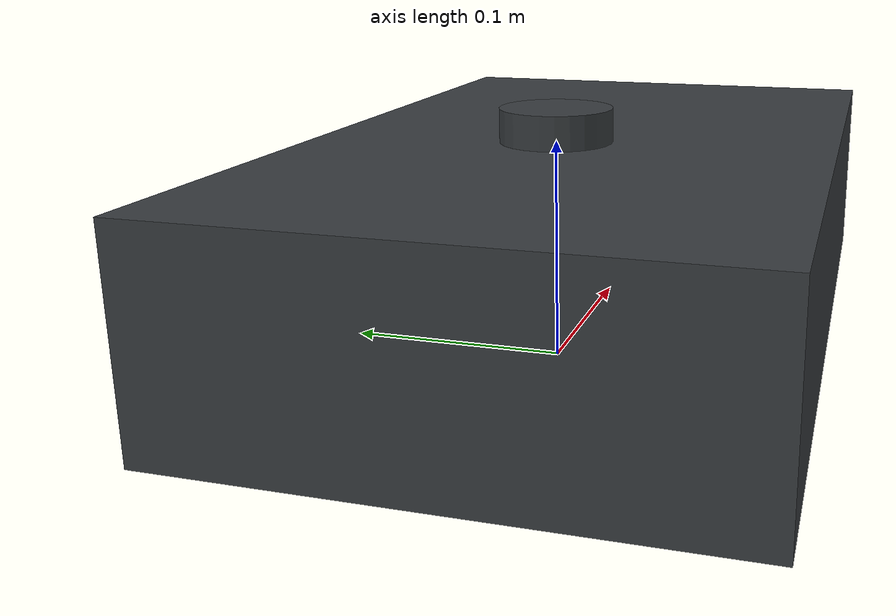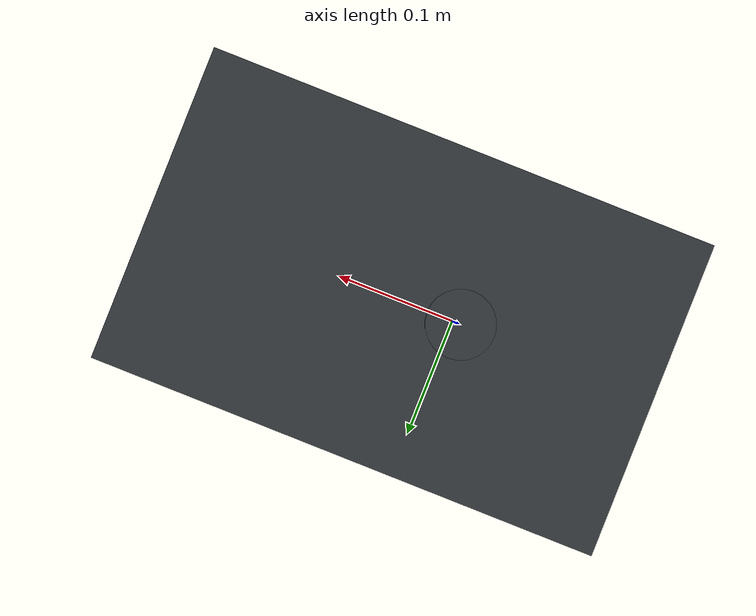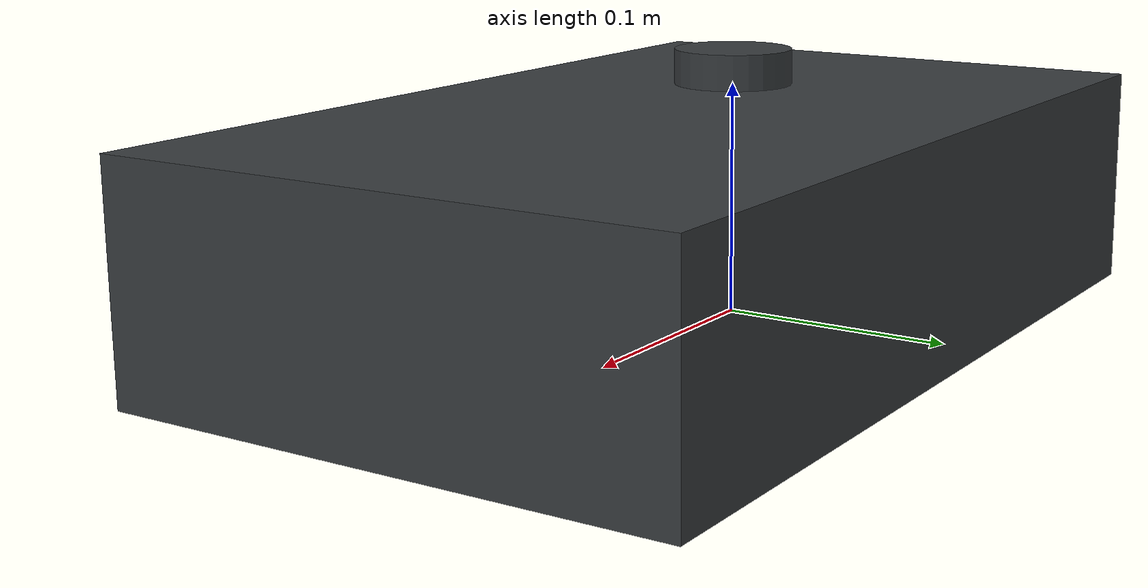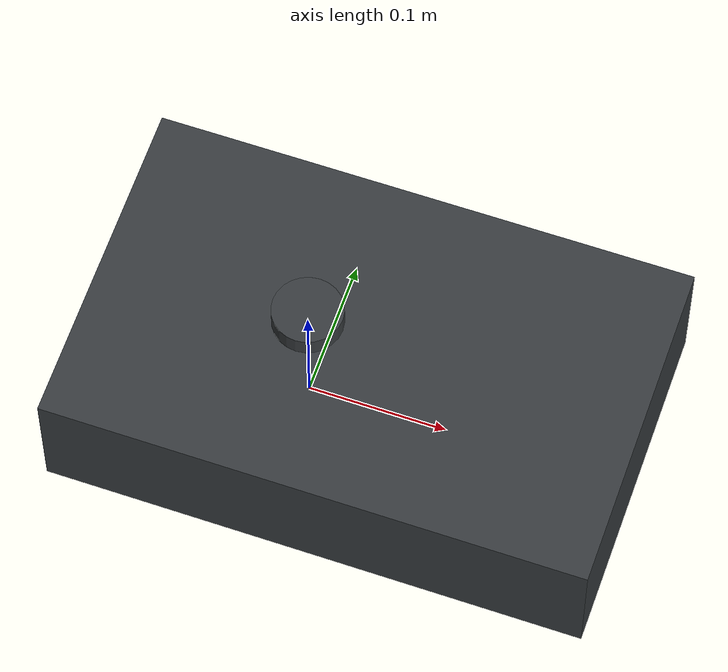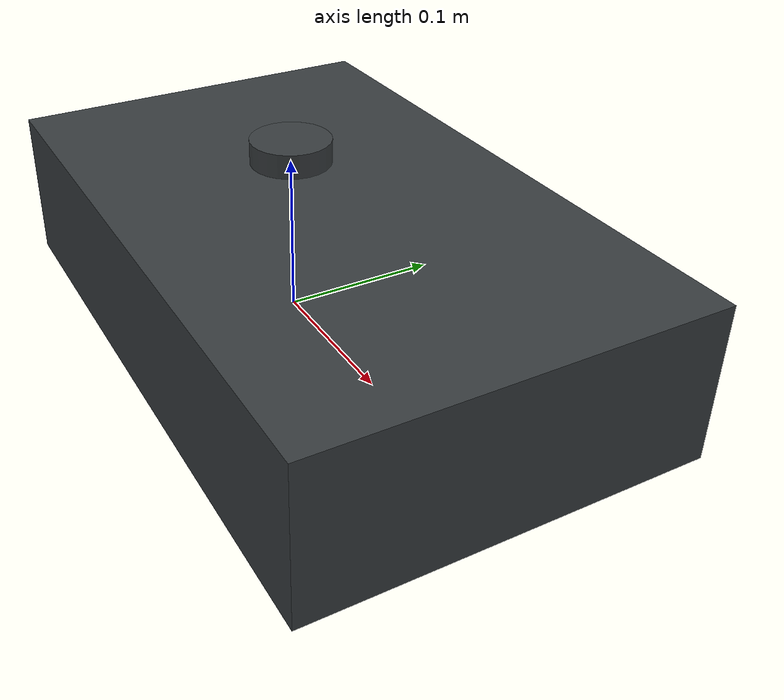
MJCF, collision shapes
<mujoco model="kachaka">
  <compiler angle="radian"/>
  <option cone="elliptic"/>

    <default>
      <default class="kachaka_visual">
        <geom group="2" type="mesh" contype="0" conaffinity="0" density="0"/>
      </default>
      <default class="kachaka_collision">
        <geom group="3" type="capsule"/>
      </default>
    </default>

  <asset>
    <mesh name="body" content_type="model/stl" file="assets/body.stl"/>
    <mesh name="right_tire" content_type="model/stl" file="assets/right_tire.stl"/>
    <mesh name="left_tire" content_type="model/stl" file="assets/left_tire.stl"/>
    <mesh name="solenoid" content_type="model/stl" file="assets/solenoid.stl"/>
  </asset>

  <worldbody>
    <light name="spotlight_kachaka" mode="targetbodycom" target="kachaka_base_link" pos="0 0 2"/>
    <body name="kachaka_base_link">
      <inertial pos="0.0435 0.0 0.0475" mass="10.0" diaginertia="0.055521 0.132328 0.172808"/>
      <freejoint/>
      <geom pos="-0.15 -0.12 0" quat="1 0 0 0" rgba="0.2175 0.2355 0.246 1" mesh="body" class="kachaka_visual"/>
      <geom size="0.1935 0.12 0.0475" pos="0.0435 0 0.0475" type="box" rgba="0.2175 0.2355 0.246 1" class="kachaka_collision"/>
      <body name="base_r_drive_wheel_link" pos="0 -0.1 0.045">
        <inertial pos="0 0 0" quat="0.5 0.5 -0.5 0.5" mass="0.2" diaginertia="0.0002025 0.000111667 0.000111667"/>
        <joint name="base_r_drive_wheel_joint" pos="0 0 0" axis="0 1 0" actuatorfrcrange="-100 100" frictionloss="0.1" armature="0.01"/>
        <geom rgba="0.3 0.3 0.3 1" mesh="right_tire" class="kachaka_visual"/>
        <geom size="0.045 0.0125" quat="0.707107 0.707107 0 0" type="cylinder" rgba="0.3 0.3 0.3 1" class="kachaka_collision"/>
      </body>
      <body name="base_l_drive_wheel_link" pos="0 0.1 0.045">
        <inertial pos="0 0 0" quat="0.5 0.5 -0.5 0.5" mass="0.2" diaginertia="0.0002025 0.000111667 0.000111667"/>
        <joint name="base_l_drive_wheel_joint" pos="0 0 0" axis="0 1 0" actuatorfrcrange="-100 100" frictionloss="0.1" armature="0.01"/>
        <geom rgba="0.3 0.3 0.3 1" mesh="left_tire" class="kachaka_visual"/>
        <geom size="0.045 0.0125" quat="0.707107 0.707107 0 0" type="cylinder" rgba="0.3 0.3 0.3 1" class="kachaka_collision"/>
      </body>
      <body name="docking_link">
        <inertial pos="0 0 0.1075" quat="0.5 0.5 -0.5 0.5" mass="0.2" diaginertia="6.25e-05 3.5e-05 3.5e-05"/>
        <joint name="docking_joint" pos="0 0 0" axis="0 0 1" type="slide" range="0 0.012" actuatorfrcrange="-1 1"/>
        <geom rgba="0.2175 0.2355 0.246 1" mesh="solenoid" class="kachaka_visual"/>
        <geom size="0.025 0.0075" pos="0 0 0.1075" type="cylinder" rgba="0.2175 0.2355 0.246 1" class="kachaka_collision"/>
      </body>
    </body>
  </worldbody>

  <actuator>
    <velocity name="base_r_drive_wheel" joint="base_r_drive_wheel_joint" kv="10" ctrlrange="-10 10" forcerange="-100 100"/>
    <velocity name="base_l_drive_wheel" joint="base_l_drive_wheel_joint" kv="10" ctrlrange="-10 10" forcerange="-100 100"/>
    <position name="docking" joint="docking_joint" kp="100" ctrlrange="0 0.012" forcerange="-1 1"/>
  </actuator>
</mujoco>
